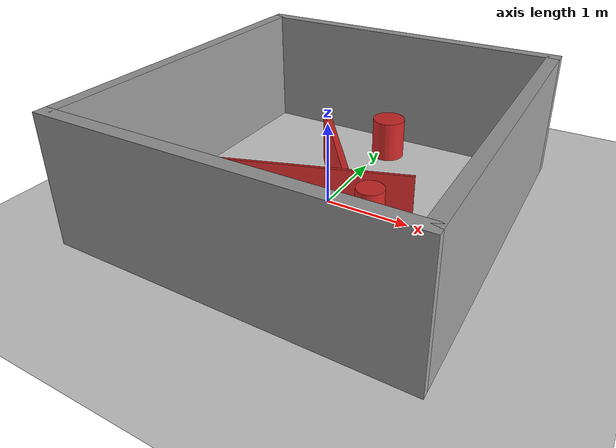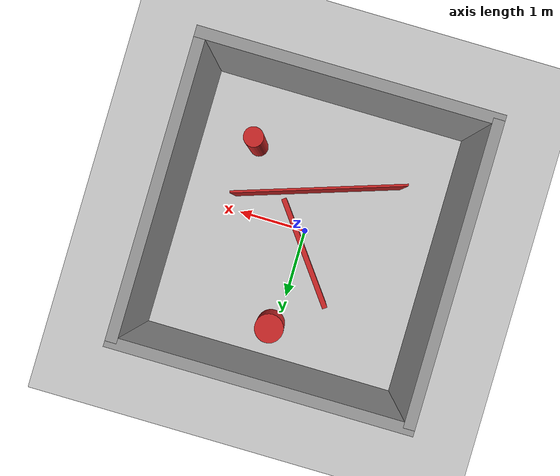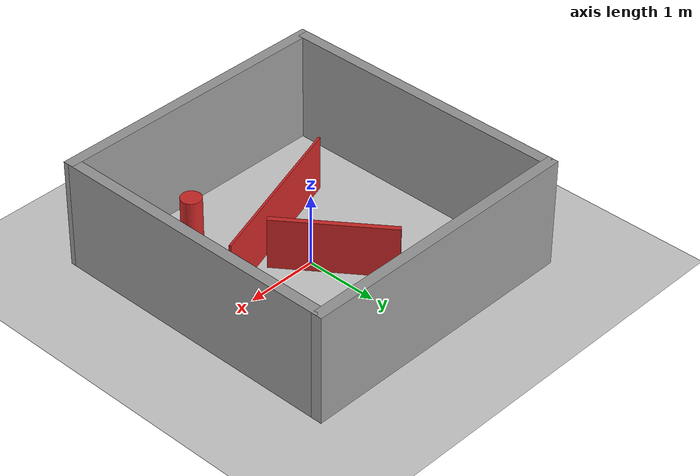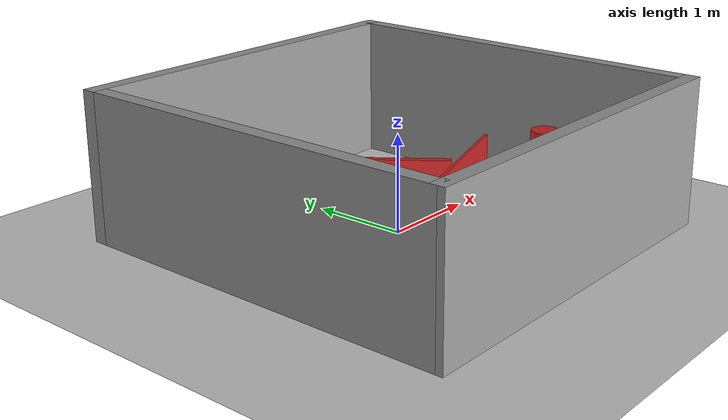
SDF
<sdf version="1.7">
 <world name="empty_square_enclosure">
  <include><uri>model://sun</uri></include>
  <model name="ground_plane">
   <static>1</static>
   <link name="link">
    <collision name="collision">
     <geometry><plane><normal>0 0 1</normal><size>100 100</size></plane></geometry>
     <surface>
      <contact><collide_bitmask>65535</collide_bitmask></contact>
      <friction><ode><mu>100</mu><mu2>50</mu2></ode></friction>
     </surface>
    </collision>
    <visual name="visual">
     <cast_shadows>0</cast_shadows>
     <geometry><plane><normal>0 0 1</normal><size>100 100</size></plane></geometry>
     <material>
      <script><uri>file://media/materials/scripts/gazebo.material</uri><name>Gazebo/Grey</name></script>
     </material>
    </visual>
   </link>
  </model>
  <model name="square_enclosure">
   <link name="Wall_0">
    <collision name="Wall_0_Collision">
     <geometry><box><size>4 0.15 1.5</size></box></geometry>
     <pose>0 0 0.75 0 -0 0</pose>
    </collision>
    <visual name="Wall_0_Visual">
     <cast_shadows>0</cast_shadows>
     <pose>0 0 0.75 0 -0 0</pose>
     <geometry><box><size>4 0.15 1.5</size></box></geometry>
     <material>
      <script><uri>file://media/materials/scripts/gazebo.material</uri><name>Gazebo/Grey</name></script>
      <ambient>1 1 1 1</ambient>
     </material>
     <meta><layer>0</layer></meta>
    </visual>
    <pose>-1.925 0 0 0 -0 -1.5708</pose>
   </link>
   <link name="Wall_1">
    <collision name="Wall_1_Collision">
     <geometry><box><size>4 0.15 1.5</size></box></geometry>
     <pose>0 0 0.75 0 -0 0</pose>
    </collision>
    <visual name="Wall_1_Visual">
     <cast_shadows>0</cast_shadows>
     <pose>0 0 0.75 0 -0 0</pose>
     <geometry><box><size>4 0.15 1.5</size></box></geometry>
     <material>
      <script><uri>file://media/materials/scripts/gazebo.material</uri><name>Gazebo/Grey</name></script>
      <ambient>1 1 1 1</ambient>
     </material>
     <meta><layer>0</layer></meta>
    </visual>
    <pose>0 -2 0 0 -0 0</pose>
   </link>
   <link name="Wall_2">
    <collision name="Wall_2_Collision">
     <geometry><box><size>4 0.15 1.5</size></box></geometry>
     <pose>0 0 0.75 0 -0 0</pose>
    </collision>
    <visual name="Wall_2_Visual">
     <cast_shadows>0</cast_shadows>
     <pose>0 0 0.75 0 -0 0</pose>
     <geometry><box><size>4 0.15 1.5</size></box></geometry>
     <material>
      <script><uri>file://media/materials/scripts/gazebo.material</uri><name>Gazebo/Grey</name></script>
      <ambient>1 1 1 1</ambient>
     </material>
     <meta><layer>0</layer></meta>
    </visual>
    <pose>1.925 0 0 0 -0 1.5708</pose>
   </link>
   <link name="Wall_3">
    <collision name="Wall_3_Collision">
     <geometry><box><size>4 0.15 1.5</size></box></geometry>
     <pose>0 0 0.75 0 -0 0</pose>
    </collision>
    <visual name="Wall_3_Visual">
     <cast_shadows>0</cast_shadows>
     <pose>0 0 0.75 0 -0 0</pose>
     <geometry><box><size>4 0.15 1.5</size></box></geometry>
     <material>
      <script><uri>file://media/materials/scripts/gazebo.material</uri><name>Gazebo/Grey</name></script>
      <ambient>1 1 1 1</ambient>
     </material>
     <meta><layer>0</layer></meta>
    </visual>
    <pose>0 2 0 0 -0 3.14159</pose>
   </link>
   <static>1</static>
  </model>
  <physics type="ode">
   <real_time_update_rate>0</real_time_update_rate>
   <ode>
    <solver>
     <type>quick</type>
     <iters>150</iters>
     <precon_iters>0</precon_iters>
     <sor>1.4</sor>
     <use_dynamic_moi_rescaling>1</use_dynamic_moi_rescaling>
     <thread_position_correction>0</thread_position_correction>
     <island_threads>0</island_threads>
    </solver>
    <constraints>
     <cfm>1e-05</cfm>
     <erp>0.2</erp>
     <contact_max_correcting_vel>2000</contact_max_correcting_vel>
     <contact_surface_layer>0.01</contact_surface_layer>
    </constraints>
   </ode>
   <max_step_size>0.001</max_step_size>
   <real_time_factor>1</real_time_factor>
  </physics>
  <scene><ambient>0.4 0.4 0.4 1</ambient><background>0.7 0.7 0.7 1</background><shadows>0</shadows></scene>
  <gravity>0 0 -9.8</gravity>
  <model name="unit_box">
   <pose>-0.077238 0.29919 0.357511 8e-06 -0 0.642349</pose>
   <link name="link">
    <inertial>
     <mass>1</mass>
     <inertia>
      <ixx>0.166667</ixx>
      <ixy>0</ixy>
      <ixz>0</ixz>
      <iyy>0.166667</iyy>
      <iyz>0</iyz>
      <izz>0.166667</izz>
     </inertia>
    </inertial>
    <collision name="collision">
     <geometry><box><size>0.0707337 1.60011 0.715034</size></box></geometry>
    </collision>
    <visual name="visual">
     <cast_shadows>0</cast_shadows>
     <geometry><box><size>0.0707337 1.60011 0.715034</size></box></geometry>
     <material>
      <script><name>Gazebo/Red</name><uri>file://media/materials/scripts/gazebo.material</uri></script>
     </material>
    </visual>
   </link>
  </model>
  <model name="unit_box_0">
   <pose>-0.022656 -0.607495 0.38531 5.8e-05 -1e-06 -1.24904</pose>
   <link name="link">
    <inertial>
     <mass>1</mass>
     <inertia>
      <ixx>0.166667</ixx>
      <ixy>0</ixy>
      <ixz>0</ixz>
      <iyy>0.166667</iyy>
      <iyz>0</iyz>
      <izz>0.166667</izz>
     </inertia>
    </inertial>
    <collision name="collision">
     <geometry><box><size>0.0316263 2.43217 0.770759</size></box></geometry>
    </collision>
    <visual name="visual">
     <cast_shadows>0</cast_shadows>
     <geometry><box><size>0.0316263 2.43217 0.770759</size></box></geometry>
     <material>
      <script><name>Gazebo/Red</name><uri>file://media/materials/scripts/gazebo.material</uri></script>
     </material>
    </visual>
   </link>
  </model>
  <model name="unit_cylinder">
   <pose>0.101205 1.45169 0.257996 -0 -0 -0</pose>
   <link name="link">
    <inertial>
     <mass>1</mass>
     <inertia><ixx>0.145833</ixx><ixy>0</ixy><ixz>0</ixz><iyy>0.145833</iyy><iyz>0</iyz><izz>0.125</izz></inertia>
    </inertial>
    <collision name="collision">
     <geometry><cylinder><radius>0.206338</radius><length>0.515993</length></cylinder></geometry>
    </collision>
    <visual name="visual">
     <cast_shadows>0</cast_shadows>
     <geometry><cylinder><radius>0.206338</radius><length>0.515993</length></cylinder></geometry>
     <material>
      <script><name>Gazebo/Red</name><uri>file://media/materials/scripts/gazebo.material</uri></script>
     </material>
    </visual>
   </link>
  </model>
  <model name="unit_cylinder_0">
   <pose>1 -1 0.499993 0 -0 0</pose>
   <link name="link">
    <inertial>
     <mass>1</mass>
     <inertia><ixx>0.145833</ixx><ixy>0</ixy><ixz>0</ixz><iyy>0.145833</iyy><iyz>0</iyz><izz>0.125</izz></inertia>
    </inertial>
    <collision name="collision">
     <geometry><cylinder><radius>0.13752</radius><length>1</length></cylinder></geometry>
    </collision>
    <visual name="visual">
     <cast_shadows>0</cast_shadows>
     <geometry><cylinder><radius>0.13752</radius><length>1</length></cylinder></geometry>
     <material>
      <script><name>Gazebo/Red</name><uri>file://media/materials/scripts/gazebo.material</uri></script>
     </material>
    </visual>
   </link>
  </model>
 </world>
</sdf>
